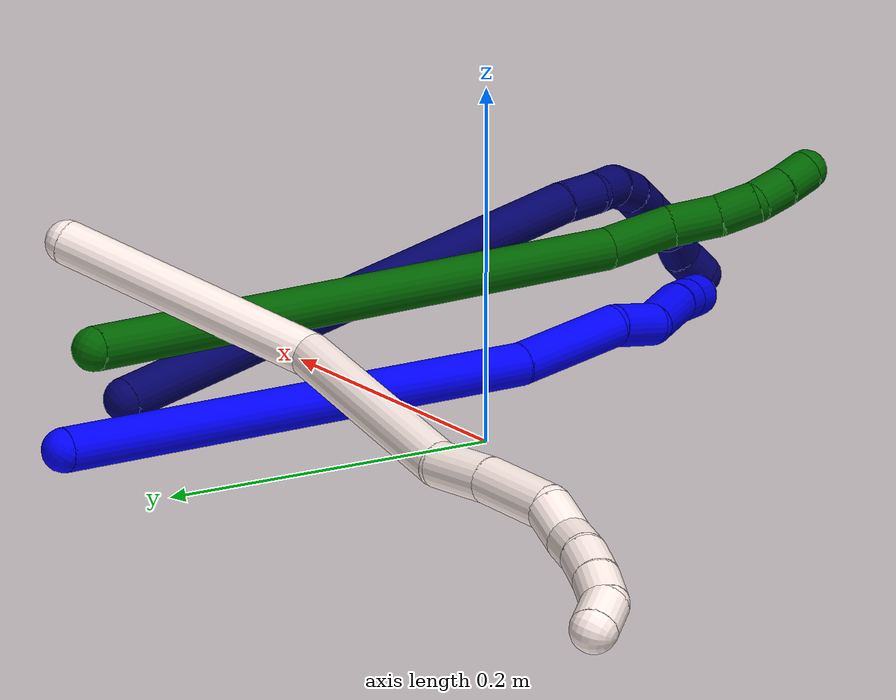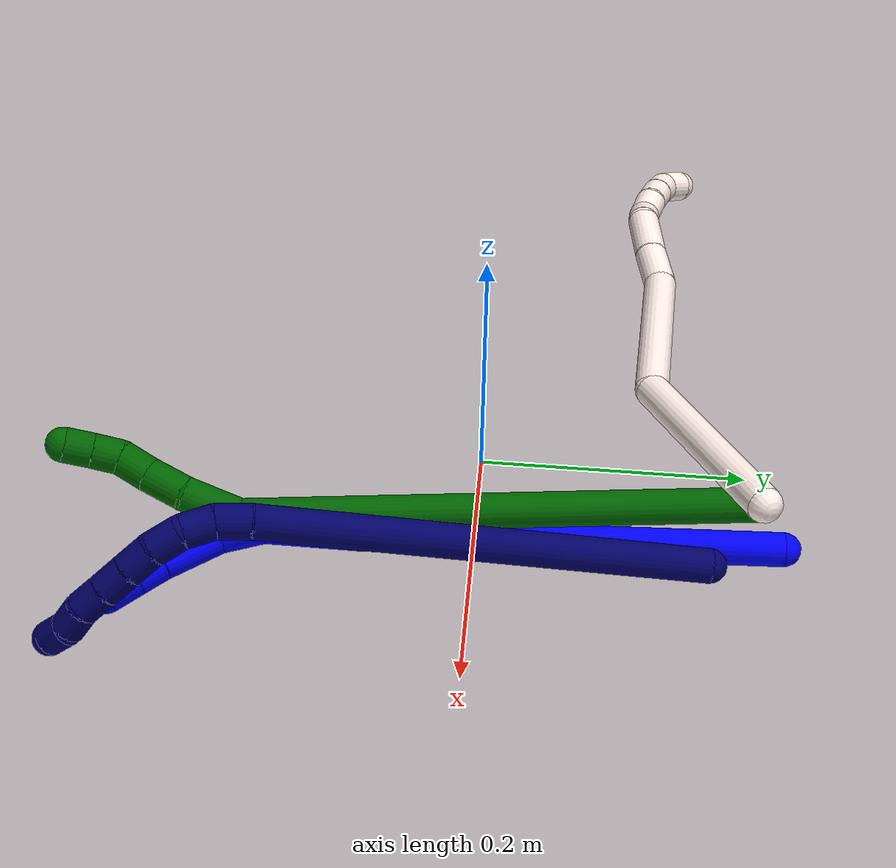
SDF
<sdf version="1.7">
 <world name="default">
  <model name="1">
   <static>0</static>
   <link name="1">
    <collision name="collision-cylinder-e_1_1_4">
     <pose>0.058964 -0.054342 0.129353 0.397718 0.397848 0.081205</pose>
     <geometry><cylinder><radius>0.0125</radius><length>0.304381</length></cylinder></geometry>
     <surface>
      <friction><ode><mu>1.16</mu><mu2>1.16</mu2><slip1>0</slip1><slip2>0</slip2></ode></friction>
      <contact><ode><kp>1e+06</kp><kd>1</kd><max_vel>0</max_vel><min_depth>0.001</min_depth></ode></contact>
     </surface>
    </collision>
    <visual name="visual-cylinder-e_1_1_4">
     <pose>0.058964 -0.054342 0.129353 0.397718 0.397848 0.081205</pose>
     <geometry><cylinder><radius>0.0125</radius><length>0.304381</length></cylinder></geometry>
     <material><ambient>0 0 1 1</ambient></material>
    </visual>
    <collision name="collision-cylinder-e_2_4_5">
     <pose>0.133415 -0.125952 0.2855 0.572475 0.452274 0.135223</pose>
     <geometry><cylinder><radius>0.0125</radius><length>0.070878</length></cylinder></geometry>
     <surface>
      <friction><ode><mu>1.16</mu><mu2>1.16</mu2><slip1>0</slip1><slip2>0</slip2></ode></friction>
      <contact><ode><kp>1e+06</kp><kd>1</kd><max_vel>0</max_vel><min_depth>0.001</min_depth></ode></contact>
     </surface>
    </collision>
    <visual name="visual-cylinder-e_2_4_5">
     <pose>0.133415 -0.125952 0.2855 0.572475 0.452274 0.135223</pose>
     <geometry><cylinder><radius>0.0125</radius><length>0.070878</length></cylinder></geometry>
     <material><ambient>0 0 1 1</ambient></material>
    </visual>
    <collision name="collision-cylinder-e_3_5_6">
     <pose>0.151299 -0.150065 0.327497 0.423067 0.142766 0.030708</pose>
     <geometry><cylinder><radius>0.0125</radius><length>0.03369</length></cylinder></geometry>
     <surface>
      <friction><ode><mu>1.16</mu><mu2>1.16</mu2><slip1>0</slip1><slip2>0</slip2></ode></friction>
      <contact><ode><kp>1e+06</kp><kd>1</kd><max_vel>0</max_vel><min_depth>0.001</min_depth></ode></contact>
     </surface>
    </collision>
    <visual name="visual-cylinder-e_3_5_6">
     <pose>0.151299 -0.150065 0.327497 0.423067 0.142766 0.030708</pose>
     <geometry><cylinder><radius>0.0125</radius><length>0.03369</length></cylinder></geometry>
     <material><ambient>0 0 1 1</ambient></material>
    </visual>
    <collision name="collision-cylinder-e_4_6_7">
     <pose>0.15248 -0.174143 0.357997 0.844849 -0.05273 -0.023706</pose>
     <geometry><cylinder><radius>0.0125</radius><length>0.046149</length></cylinder></geometry>
     <surface>
      <friction><ode><mu>1.16</mu><mu2>1.16</mu2><slip1>0</slip1><slip2>0</slip2></ode></friction>
      <contact><ode><kp>1e+06</kp><kd>1</kd><max_vel>0</max_vel><min_depth>0.001</min_depth></ode></contact>
     </surface>
    </collision>
    <visual name="visual-cylinder-e_4_6_7">
     <pose>0.15248 -0.174143 0.357997 0.844849 -0.05273 -0.023706</pose>
     <geometry><cylinder><radius>0.0125</radius><length>0.046149</length></cylinder></geometry>
     <material><ambient>0 0 1 1</ambient></material>
    </visual>
    <collision name="collision-cylinder-e_5_7_8">
     <pose>0.149622 -0.198438 0.380993 0.742256 -0.155877 -0.060766</pose>
     <geometry><cylinder><radius>0.0125</radius><length>0.021154</length></cylinder></geometry>
     <surface>
      <friction><ode><mu>1.16</mu><mu2>1.16</mu2><slip1>0</slip1><slip2>0</slip2></ode></friction>
      <contact><ode><kp>1e+06</kp><kd>1</kd><max_vel>0</max_vel><min_depth>0.001</min_depth></ode></contact>
     </surface>
    </collision>
    <visual name="visual-cylinder-e_5_7_8">
     <pose>0.149622 -0.198438 0.380993 0.742256 -0.155877 -0.060766</pose>
     <geometry><cylinder><radius>0.0125</radius><length>0.021154</length></cylinder></geometry>
     <material><ambient>0 0 1 1</ambient></material>
    </visual>
    <collision name="collision-cylinder-e_6_8_2">
     <pose>0.146069 -0.213348 0.397398 0.733621 -0.161604 -0.062203</pose>
     <geometry><cylinder><radius>0.0125</radius><length>0.023749</length></cylinder></geometry>
     <surface>
      <friction><ode><mu>1.16</mu><mu2>1.16</mu2><slip1>0</slip1><slip2>0</slip2></ode></friction>
      <contact><ode><kp>1e+06</kp><kd>1</kd><max_vel>0</max_vel><min_depth>0.001</min_depth></ode></contact>
     </surface>
    </collision>
    <visual name="visual-cylinder-e_6_8_2">
     <pose>0.146069 -0.213348 0.397398 0.733621 -0.161604 -0.062203</pose>
     <geometry><cylinder><radius>0.0125</radius><length>0.023749</length></cylinder></geometry>
     <material><ambient>0 0 1 1</ambient></material>
    </visual>
    <collision name="collision-sphere-2">
     <pose>0.144159 -0.221195 0.406103 0 -0 0</pose>
     <geometry><sphere><radius>0.0125</radius></sphere></geometry>
     <surface>
      <friction><ode><mu>1.16</mu><mu2>1.16</mu2><slip1>0</slip1><slip2>0</slip2></ode></friction>
      <contact><ode><kp>1e+06</kp><kd>1</kd><max_vel>0</max_vel><min_depth>0.001</min_depth></ode></contact>
     </surface>
    </collision>
    <visual name="visual-sphere-2">
     <pose>0.144159 -0.221195 0.406103 0 -0 0</pose>
     <geometry><sphere><radius>0.0125</radius></sphere></geometry>
     <material><ambient>0 0 1 1</ambient></material>
    </visual>
    <collision name="collision-sphere-4">
     <pose>0.117928 -0.108684 0.258706 0 -0 0</pose>
     <geometry><sphere><radius>0.0125</radius></sphere></geometry>
     <surface>
      <friction><ode><mu>1.16</mu><mu2>1.16</mu2><slip1>0</slip1><slip2>0</slip2></ode></friction>
      <contact><ode><kp>1e+06</kp><kd>1</kd><max_vel>0</max_vel><min_depth>0.001</min_depth></ode></contact>
     </surface>
    </collision>
    <visual name="visual-sphere-4">
     <pose>0.117928 -0.108684 0.258706 0 -0 0</pose>
     <geometry><sphere><radius>0.0125</radius></sphere></geometry>
     <material><ambient>0 0 1 1</ambient></material>
    </visual>
    <collision name="collision-sphere-1">
     <geometry><sphere><radius>0.0125</radius></sphere></geometry>
     <surface>
      <friction><ode><mu>1.16</mu><mu2>1.16</mu2><slip1>0</slip1><slip2>0</slip2></ode></friction>
      <contact><ode><kp>1e+06</kp><kd>1</kd><max_vel>0</max_vel><min_depth>0.001</min_depth></ode></contact>
     </surface>
    </collision>
    <visual name="visual-sphere-1">
     <geometry><sphere><radius>0.0125</radius></sphere></geometry>
     <material><ambient>0 0 1 1</ambient></material>
    </visual>
    <collision name="collision-sphere-8">
     <pose>0.14798 -0.205501 0.388693 0 -0 0</pose>
     <geometry><sphere><radius>0.0125</radius></sphere></geometry>
     <surface>
      <friction><ode><mu>1.16</mu><mu2>1.16</mu2><slip1>0</slip1><slip2>0</slip2></ode></friction>
      <contact><ode><kp>1e+06</kp><kd>1</kd><max_vel>0</max_vel><min_depth>0.001</min_depth></ode></contact>
     </surface>
    </collision>
    <visual name="visual-sphere-8">
     <pose>0.14798 -0.205501 0.388693 0 -0 0</pose>
     <geometry><sphere><radius>0.0125</radius></sphere></geometry>
     <material><ambient>0 0 1 1</ambient></material>
    </visual>
    <collision name="collision-sphere-5">
     <pose>0.148903 -0.143219 0.312293 0 -0 0</pose>
     <geometry><sphere><radius>0.0125</radius></sphere></geometry>
     <surface>
      <friction><ode><mu>1.16</mu><mu2>1.16</mu2><slip1>0</slip1><slip2>0</slip2></ode></friction>
      <contact><ode><kp>1e+06</kp><kd>1</kd><max_vel>0</max_vel><min_depth>0.001</min_depth></ode></contact>
     </surface>
    </collision>
    <visual name="visual-sphere-5">
     <pose>0.148903 -0.143219 0.312293 0 -0 0</pose>
     <geometry><sphere><radius>0.0125</radius></sphere></geometry>
     <material><ambient>0 0 1 1</ambient></material>
    </visual>
    <collision name="collision-sphere-6">
     <pose>0.153696 -0.15691 0.3427 0 -0 0</pose>
     <geometry><sphere><radius>0.0125</radius></sphere></geometry>
     <surface>
      <friction><ode><mu>1.16</mu><mu2>1.16</mu2><slip1>0</slip1><slip2>0</slip2></ode></friction>
      <contact><ode><kp>1e+06</kp><kd>1</kd><max_vel>0</max_vel><min_depth>0.001</min_depth></ode></contact>
     </surface>
    </collision>
    <visual name="visual-sphere-6">
     <pose>0.153696 -0.15691 0.3427 0 -0 0</pose>
     <geometry><sphere><radius>0.0125</radius></sphere></geometry>
     <material><ambient>0 0 1 1</ambient></material>
    </visual>
    <collision name="collision-sphere-7">
     <pose>0.151264 -0.191375 0.373293 0 -0 0</pose>
     <geometry><sphere><radius>0.0125</radius></sphere></geometry>
     <surface>
      <friction><ode><mu>1.16</mu><mu2>1.16</mu2><slip1>0</slip1><slip2>0</slip2></ode></friction>
      <contact><ode><kp>1e+06</kp><kd>1</kd><max_vel>0</max_vel><min_depth>0.001</min_depth></ode></contact>
     </surface>
    </collision>
    <visual name="visual-sphere-7">
     <pose>0.151264 -0.191375 0.373293 0 -0 0</pose>
     <geometry><sphere><radius>0.0125</radius></sphere></geometry>
     <material><ambient>0 0 1 1</ambient></material>
    </visual>
    <inertial>
     <pose>0.092343 -0.095649 0.209319 0 -0 0</pose>
     <mass>0.5</mass>
     <inertia>
      <ixx>0.002409</ixx>
      <ixy>0</ixy>
      <ixz>0</ixz>
      <iyy>0.002404</iyy>
      <iyz>0</iyz>
      <izz>-2.6e-05</izz>
     </inertia>
    </inertial>
   </link>
   <pose>0.075067 0.223698 0.011494 -2.34757 -0.721909 -2.55317</pose>
  </model>
  <model name="6">
   <static>0</static>
   <link name="6">
    <collision name="collision-cylinder-e_1_1_4">
     <pose>0.062867 -0.157906 -0.066121 1.96735 0.351945 0.52225</pose>
     <geometry><cylinder><radius>0.0125</radius><length>0.364739</length></cylinder></geometry>
     <surface>
      <friction><ode><mu>1.16</mu><mu2>1.16</mu2><slip1>0</slip1><slip2>0</slip2></ode></friction>
      <contact><ode><kp>1e+06</kp><kd>1</kd><max_vel>0</max_vel><min_depth>0.001</min_depth></ode></contact>
     </surface>
    </collision>
    <visual name="visual-cylinder-e_1_1_4">
     <pose>0.062867 -0.157906 -0.066121 1.96735 0.351945 0.52225</pose>
     <geometry><cylinder><radius>0.0125</radius><length>0.364739</length></cylinder></geometry>
     <material><ambient>0 0.392157 0.003922 1</ambient></material>
    </visual>
    <collision name="collision-cylinder-e_2_4_5">
     <pose>0.125352 -0.333245 -0.143323 2.13705 -0.018485 -0.033653</pose>
     <geometry><cylinder><radius>0.0125</radius><length>0.041321</length></cylinder></geometry>
     <surface>
      <friction><ode><mu>1.16</mu><mu2>1.16</mu2><slip1>0</slip1><slip2>0</slip2></ode></friction>
      <contact><ode><kp>1e+06</kp><kd>1</kd><max_vel>0</max_vel><min_depth>0.001</min_depth></ode></contact>
     </surface>
    </collision>
    <visual name="visual-cylinder-e_2_4_5">
     <pose>0.125352 -0.333245 -0.143323 2.13705 -0.018485 -0.033653</pose>
     <geometry><cylinder><radius>0.0125</radius><length>0.041321</length></cylinder></geometry>
     <material><ambient>0 0.392157 0.003922 1</ambient></material>
    </visual>
    <collision name="collision-cylinder-e_3_5_6">
     <pose>0.124383 -0.36131 -0.164485 2.32957 -0.040077 -0.09317</pose>
     <geometry><cylinder><radius>0.0125</radius><length>0.029324</length></cylinder></geometry>
     <surface>
      <friction><ode><mu>1.16</mu><mu2>1.16</mu2><slip1>0</slip1><slip2>0</slip2></ode></friction>
      <contact><ode><kp>1e+06</kp><kd>1</kd><max_vel>0</max_vel><min_depth>0.001</min_depth></ode></contact>
     </surface>
    </collision>
    <visual name="visual-cylinder-e_3_5_6">
     <pose>0.124383 -0.36131 -0.164485 2.32957 -0.040077 -0.09317</pose>
     <geometry><cylinder><radius>0.0125</radius><length>0.029324</length></cylinder></geometry>
     <material><ambient>0 0.392157 0.003922 1</ambient></material>
    </visual>
    <collision name="collision-cylinder-e_4_6_7">
     <pose>0.121987 -0.381095 -0.181843 2.24252 -0.153399 -0.315908</pose>
     <geometry><cylinder><radius>0.0125</radius><length>0.023668</length></cylinder></geometry>
     <surface>
      <friction><ode><mu>1.16</mu><mu2>1.16</mu2><slip1>0</slip1><slip2>0</slip2></ode></friction>
      <contact><ode><kp>1e+06</kp><kd>1</kd><max_vel>0</max_vel><min_depth>0.001</min_depth></ode></contact>
     </surface>
    </collision>
    <visual name="visual-cylinder-e_4_6_7">
     <pose>0.121987 -0.381095 -0.181843 2.24252 -0.153399 -0.315908</pose>
     <geometry><cylinder><radius>0.0125</radius><length>0.023668</length></cylinder></geometry>
     <material><ambient>0 0.392157 0.003922 1</ambient></material>
    </visual>
    <collision name="collision-cylinder-e_5_7_8">
     <pose>0.120592 -0.400056 -0.192319 1.88598 0.039996 0.055102</pose>
     <geometry><cylinder><radius>0.0125</radius><length>0.020646</length></cylinder></geometry>
     <surface>
      <friction><ode><mu>1.16</mu><mu2>1.16</mu2><slip1>0</slip1><slip2>0</slip2></ode></friction>
      <contact><ode><kp>1e+06</kp><kd>1</kd><max_vel>0</max_vel><min_depth>0.001</min_depth></ode></contact>
     </surface>
    </collision>
    <visual name="visual-cylinder-e_5_7_8">
     <pose>0.120592 -0.400056 -0.192319 1.88598 0.039996 0.055102</pose>
     <geometry><cylinder><radius>0.0125</radius><length>0.020646</length></cylinder></geometry>
     <material><ambient>0 0.392157 0.003922 1</ambient></material>
    </visual>
    <collision name="collision-cylinder-e_6_8_2">
     <pose>0.121305 -0.419751 -0.197791 1.79691 0.029576 0.037151</pose>
     <geometry><cylinder><radius>0.0125</radius><length>0.020302</length></cylinder></geometry>
     <surface>
      <friction><ode><mu>1.16</mu><mu2>1.16</mu2><slip1>0</slip1><slip2>0</slip2></ode></friction>
      <contact><ode><kp>1e+06</kp><kd>1</kd><max_vel>0</max_vel><min_depth>0.001</min_depth></ode></contact>
     </surface>
    </collision>
    <visual name="visual-cylinder-e_6_8_2">
     <pose>0.121305 -0.419751 -0.197791 1.79691 0.029576 0.037151</pose>
     <geometry><cylinder><radius>0.0125</radius><length>0.020302</length></cylinder></geometry>
     <material><ambient>0 0.392157 0.003922 1</ambient></material>
    </visual>
    <collision name="collision-sphere-2">
     <pose>0.121605 -0.429639 -0.200066 0 -0 0</pose>
     <geometry><sphere><radius>0.0125</radius></sphere></geometry>
     <surface>
      <friction><ode><mu>1.16</mu><mu2>1.16</mu2><slip1>0</slip1><slip2>0</slip2></ode></friction>
      <contact><ode><kp>1e+06</kp><kd>1</kd><max_vel>0</max_vel><min_depth>0.001</min_depth></ode></contact>
     </surface>
    </collision>
    <visual name="visual-sphere-2">
     <pose>0.121605 -0.429639 -0.200066 0 -0 0</pose>
     <geometry><sphere><radius>0.0125</radius></sphere></geometry>
     <material><ambient>0 0.392157 0.003922 1</ambient></material>
    </visual>
    <collision name="collision-sphere-4">
     <pose>0.125734 -0.315813 -0.132241 0 -0 0</pose>
     <geometry><sphere><radius>0.0125</radius></sphere></geometry>
     <surface>
      <friction><ode><mu>1.16</mu><mu2>1.16</mu2><slip1>0</slip1><slip2>0</slip2></ode></friction>
      <contact><ode><kp>1e+06</kp><kd>1</kd><max_vel>0</max_vel><min_depth>0.001</min_depth></ode></contact>
     </surface>
    </collision>
    <visual name="visual-sphere-4">
     <pose>0.125734 -0.315813 -0.132241 0 -0 0</pose>
     <geometry><sphere><radius>0.0125</radius></sphere></geometry>
     <material><ambient>0 0.392157 0.003922 1</ambient></material>
    </visual>
    <collision name="collision-sphere-1">
     <geometry><sphere><radius>0.0125</radius></sphere></geometry>
     <surface>
      <friction><ode><mu>1.16</mu><mu2>1.16</mu2><slip1>0</slip1><slip2>0</slip2></ode></friction>
      <contact><ode><kp>1e+06</kp><kd>1</kd><max_vel>0</max_vel><min_depth>0.001</min_depth></ode></contact>
     </surface>
    </collision>
    <visual name="visual-sphere-1">
     <geometry><sphere><radius>0.0125</radius></sphere></geometry>
     <material><ambient>0 0.392157 0.003922 1</ambient></material>
    </visual>
    <collision name="collision-sphere-8">
     <pose>0.121005 -0.409863 -0.195517 0 -0 0</pose>
     <geometry><sphere><radius>0.0125</radius></sphere></geometry>
     <surface>
      <friction><ode><mu>1.16</mu><mu2>1.16</mu2><slip1>0</slip1><slip2>0</slip2></ode></friction>
      <contact><ode><kp>1e+06</kp><kd>1</kd><max_vel>0</max_vel><min_depth>0.001</min_depth></ode></contact>
     </surface>
    </collision>
    <visual name="visual-sphere-8">
     <pose>0.121005 -0.409863 -0.195517 0 -0 0</pose>
     <geometry><sphere><radius>0.0125</radius></sphere></geometry>
     <material><ambient>0 0.392157 0.003922 1</ambient></material>
    </visual>
    <collision name="collision-sphere-5">
     <pose>0.12497 -0.350678 -0.154405 0 -0 0</pose>
     <geometry><sphere><radius>0.0125</radius></sphere></geometry>
     <surface>
      <friction><ode><mu>1.16</mu><mu2>1.16</mu2><slip1>0</slip1><slip2>0</slip2></ode></friction>
      <contact><ode><kp>1e+06</kp><kd>1</kd><max_vel>0</max_vel><min_depth>0.001</min_depth></ode></contact>
     </surface>
    </collision>
    <visual name="visual-sphere-5">
     <pose>0.12497 -0.350678 -0.154405 0 -0 0</pose>
     <geometry><sphere><radius>0.0125</radius></sphere></geometry>
     <material><ambient>0 0.392157 0.003922 1</ambient></material>
    </visual>
    <collision name="collision-sphere-6">
     <pose>0.123795 -0.371941 -0.174565 0 -0 0</pose>
     <geometry><sphere><radius>0.0125</radius></sphere></geometry>
     <surface>
      <friction><ode><mu>1.16</mu><mu2>1.16</mu2><slip1>0</slip1><slip2>0</slip2></ode></friction>
      <contact><ode><kp>1e+06</kp><kd>1</kd><max_vel>0</max_vel><min_depth>0.001</min_depth></ode></contact>
     </surface>
    </collision>
    <visual name="visual-sphere-6">
     <pose>0.123795 -0.371941 -0.174565 0 -0 0</pose>
     <geometry><sphere><radius>0.0125</radius></sphere></geometry>
     <material><ambient>0 0.392157 0.003922 1</ambient></material>
    </visual>
    <collision name="collision-sphere-7">
     <pose>0.120179 -0.39025 -0.189122 0 -0 0</pose>
     <geometry><sphere><radius>0.0125</radius></sphere></geometry>
     <surface>
      <friction><ode><mu>1.16</mu><mu2>1.16</mu2><slip1>0</slip1><slip2>0</slip2></ode></friction>
      <contact><ode><kp>1e+06</kp><kd>1</kd><max_vel>0</max_vel><min_depth>0.001</min_depth></ode></contact>
     </surface>
    </collision>
    <visual name="visual-sphere-7">
     <pose>0.120179 -0.39025 -0.189122 0 -0 0</pose>
     <geometry><sphere><radius>0.0125</radius></sphere></geometry>
     <material><ambient>0 0.392157 0.003922 1</ambient></material>
    </visual>
    <inertial>
     <pose>0.079194 -0.215522 -0.094305 0 -0 0</pose>
     <mass>0.5</mass>
     <inertia>
      <ixx>0.005226</ixx>
      <ixy>0</ixy>
      <ixz>0</ixz>
      <iyy>0.001143</iyy>
      <iyz>0</iyz>
      <izz>0.002113</izz>
     </inertia>
    </inertial>
   </link>
   <pose>0.079556 0.201765 0.064257 -1.01638 1.01887 -0.584873</pose>
  </model>
  <model name="7">
   <static>0</static>
   <link name="7">
    <collision name="collision-cylinder-e_1_1_4">
     <pose>-0.029275 -0.156742 0.023596 1.42138 -0.182631 -0.157309</pose>
     <geometry><cylinder><radius>0.0125</radius><length>0.322377</length></cylinder></geometry>
     <surface>
      <friction><ode><mu>1.16</mu><mu2>1.16</mu2><slip1>0</slip1><slip2>0</slip2></ode></friction>
      <contact><ode><kp>1e+06</kp><kd>1</kd><max_vel>0</max_vel><min_depth>0.001</min_depth></ode></contact>
     </surface>
    </collision>
    <visual name="visual-cylinder-e_1_1_4">
     <pose>-0.029275 -0.156742 0.023596 1.42138 -0.182631 -0.157309</pose>
     <geometry><cylinder><radius>0.0125</radius><length>0.322377</length></cylinder></geometry>
     <material><ambient>0.003922 0 0.403922 1</ambient></material>
    </visual>
    <collision name="collision-cylinder-e_2_4_5">
     <pose>-0.059381 -0.32619 0.048567 1.46305 -0.064939 -0.058298</pose>
     <geometry><cylinder><radius>0.0125</radius><length>0.025615</length></cylinder></geometry>
     <surface>
      <friction><ode><mu>1.16</mu><mu2>1.16</mu2><slip1>0</slip1><slip2>0</slip2></ode></friction>
      <contact><ode><kp>1e+06</kp><kd>1</kd><max_vel>0</max_vel><min_depth>0.001</min_depth></ode></contact>
     </surface>
    </collision>
    <visual name="visual-cylinder-e_2_4_5">
     <pose>-0.059381 -0.32619 0.048567 1.46305 -0.064939 -0.058298</pose>
     <geometry><cylinder><radius>0.0125</radius><length>0.025615</length></cylinder></geometry>
     <material><ambient>0.003922 0 0.403922 1</ambient></material>
    </visual>
    <collision name="collision-cylinder-e_3_5_6">
     <pose>-0.058209 -0.349814 0.054028 1.21264 0.170111 0.118112</pose>
     <geometry><cylinder><radius>0.0125</radius><length>0.023656</length></cylinder></geometry>
     <surface>
      <friction><ode><mu>1.16</mu><mu2>1.16</mu2><slip1>0</slip1><slip2>0</slip2></ode></friction>
      <contact><ode><kp>1e+06</kp><kd>1</kd><max_vel>0</max_vel><min_depth>0.001</min_depth></ode></contact>
     </surface>
    </collision>
    <visual name="visual-cylinder-e_3_5_6">
     <pose>-0.058209 -0.349814 0.054028 1.21264 0.170111 0.118112</pose>
     <geometry><cylinder><radius>0.0125</radius><length>0.023656</length></cylinder></geometry>
     <material><ambient>0.003922 0 0.403922 1</ambient></material>
    </visual>
    <collision name="collision-cylinder-e_4_6_7">
     <pose>-0.050869 -0.370661 0.05975 1.40754 0.487664 0.416194</pose>
     <geometry><cylinder><radius>0.0125</radius><length>0.022784</length></cylinder></geometry>
     <surface>
      <friction><ode><mu>1.16</mu><mu2>1.16</mu2><slip1>0</slip1><slip2>0</slip2></ode></friction>
      <contact><ode><kp>1e+06</kp><kd>1</kd><max_vel>0</max_vel><min_depth>0.001</min_depth></ode></contact>
     </surface>
    </collision>
    <visual name="visual-cylinder-e_4_6_7">
     <pose>-0.050869 -0.370661 0.05975 1.40754 0.487664 0.416194</pose>
     <geometry><cylinder><radius>0.0125</radius><length>0.022784</length></cylinder></geometry>
     <material><ambient>0.003922 0 0.403922 1</ambient></material>
    </visual>
    <collision name="collision-cylinder-e_5_7_8">
     <pose>-0.038606 -0.389194 0.062158 1.4813 0.675834 0.621716</pose>
     <geometry><cylinder><radius>0.0125</radius><length>0.02214</length></cylinder></geometry>
     <surface>
      <friction><ode><mu>1.16</mu><mu2>1.16</mu2><slip1>0</slip1><slip2>0</slip2></ode></friction>
      <contact><ode><kp>1e+06</kp><kd>1</kd><max_vel>0</max_vel><min_depth>0.001</min_depth></ode></contact>
     </surface>
    </collision>
    <visual name="visual-cylinder-e_5_7_8">
     <pose>-0.038606 -0.389194 0.062158 1.4813 0.675834 0.621716</pose>
     <geometry><cylinder><radius>0.0125</radius><length>0.02214</length></cylinder></geometry>
     <material><ambient>0.003922 0 0.403922 1</ambient></material>
    </visual>
    <collision name="collision-cylinder-e_6_8_9">
     <pose>-0.024739 -0.406245 0.063185 1.54057 0.68758 0.668618</pose>
     <geometry><cylinder><radius>0.0125</radius><length>0.021877</length></cylinder></geometry>
     <surface>
      <friction><ode><mu>1.16</mu><mu2>1.16</mu2><slip1>0</slip1><slip2>0</slip2></ode></friction>
      <contact><ode><kp>1e+06</kp><kd>1</kd><max_vel>0</max_vel><min_depth>0.001</min_depth></ode></contact>
     </surface>
    </collision>
    <visual name="visual-cylinder-e_6_8_9">
     <pose>-0.024739 -0.406245 0.063185 1.54057 0.68758 0.668618</pose>
     <geometry><cylinder><radius>0.0125</radius><length>0.021877</length></cylinder></geometry>
     <material><ambient>0.003922 0 0.403922 1</ambient></material>
    </visual>
    <collision name="collision-cylinder-e_7_9_10">
     <pose>-0.010998 -0.423014 0.06309 1.61291 0.684711 0.71179</pose>
     <geometry><cylinder><radius>0.0125</radius><length>0.021499</length></cylinder></geometry>
     <surface>
      <friction><ode><mu>1.16</mu><mu2>1.16</mu2><slip1>0</slip1><slip2>0</slip2></ode></friction>
      <contact><ode><kp>1e+06</kp><kd>1</kd><max_vel>0</max_vel><min_depth>0.001</min_depth></ode></contact>
     </surface>
    </collision>
    <visual name="visual-cylinder-e_7_9_10">
     <pose>-0.010998 -0.423014 0.06309 1.61291 0.684711 0.71179</pose>
     <geometry><cylinder><radius>0.0125</radius><length>0.021499</length></cylinder></geometry>
     <material><ambient>0.003922 0 0.403922 1</ambient></material>
    </visual>
    <collision name="collision-cylinder-e_8_10_11">
     <pose>0.003547 -0.437442 0.061017 1.84559 0.884343 1.11772</pose>
     <geometry><cylinder><radius>0.0125</radius><length>0.02003</length></cylinder></geometry>
     <surface>
      <friction><ode><mu>1.16</mu><mu2>1.16</mu2><slip1>0</slip1><slip2>0</slip2></ode></friction>
      <contact><ode><kp>1e+06</kp><kd>1</kd><max_vel>0</max_vel><min_depth>0.001</min_depth></ode></contact>
     </surface>
    </collision>
    <visual name="visual-cylinder-e_8_10_11">
     <pose>0.003547 -0.437442 0.061017 1.84559 0.884343 1.11772</pose>
     <geometry><cylinder><radius>0.0125</radius><length>0.02003</length></cylinder></geometry>
     <material><ambient>0.003922 0 0.403922 1</ambient></material>
    </visual>
    <collision name="collision-cylinder-e_9_11_2">
     <pose>0.016693 -0.451013 0.055372 2.05483 0.569677 0.902734</pose>
     <geometry><cylinder><radius>0.0125</radius><length>0.020021</length></cylinder></geometry>
     <surface>
      <friction><ode><mu>1.16</mu><mu2>1.16</mu2><slip1>0</slip1><slip2>0</slip2></ode></friction>
      <contact><ode><kp>1e+06</kp><kd>1</kd><max_vel>0</max_vel><min_depth>0.001</min_depth></ode></contact>
     </surface>
    </collision>
    <visual name="visual-cylinder-e_9_11_2">
     <pose>0.016693 -0.451013 0.055372 2.05483 0.569677 0.902734</pose>
     <geometry><cylinder><radius>0.0125</radius><length>0.020021</length></cylinder></geometry>
     <material><ambient>0.003922 0 0.403922 1</ambient></material>
    </visual>
    <collision name="collision-sphere-2">
     <pose>0.022093 -0.458474 0.051449 0 -0 0</pose>
     <geometry><sphere><radius>0.0125</radius></sphere></geometry>
     <surface>
      <friction><ode><mu>1.16</mu><mu2>1.16</mu2><slip1>0</slip1><slip2>0</slip2></ode></friction>
      <contact><ode><kp>1e+06</kp><kd>1</kd><max_vel>0</max_vel><min_depth>0.001</min_depth></ode></contact>
     </surface>
    </collision>
    <visual name="visual-sphere-2">
     <pose>0.022093 -0.458474 0.051449 0 -0 0</pose>
     <geometry><sphere><radius>0.0125</radius></sphere></geometry>
     <material><ambient>0.003922 0 0.403922 1</ambient></material>
    </visual>
    <collision name="collision-sphere-11">
     <pose>0.011294 -0.443552 0.059295 0 -0 0</pose>
     <geometry><sphere><radius>0.0125</radius></sphere></geometry>
     <surface>
      <friction><ode><mu>1.16</mu><mu2>1.16</mu2><slip1>0</slip1><slip2>0</slip2></ode></friction>
      <contact><ode><kp>1e+06</kp><kd>1</kd><max_vel>0</max_vel><min_depth>0.001</min_depth></ode></contact>
     </surface>
    </collision>
    <visual name="visual-sphere-11">
     <pose>0.011294 -0.443552 0.059295 0 -0 0</pose>
     <geometry><sphere><radius>0.0125</radius></sphere></geometry>
     <material><ambient>0.003922 0 0.403922 1</ambient></material>
    </visual>
    <collision name="collision-sphere-10">
     <pose>-0.0042 -0.431333 0.06274 0 -0 0</pose>
     <geometry><sphere><radius>0.0125</radius></sphere></geometry>
     <surface>
      <friction><ode><mu>1.16</mu><mu2>1.16</mu2><slip1>0</slip1><slip2>0</slip2></ode></friction>
      <contact><ode><kp>1e+06</kp><kd>1</kd><max_vel>0</max_vel><min_depth>0.001</min_depth></ode></contact>
     </surface>
    </collision>
    <visual name="visual-sphere-10">
     <pose>-0.0042 -0.431333 0.06274 0 -0 0</pose>
     <geometry><sphere><radius>0.0125</radius></sphere></geometry>
     <material><ambient>0.003922 0 0.403922 1</ambient></material>
    </visual>
    <collision name="collision-sphere-9">
     <pose>-0.017797 -0.414695 0.063441 0 -0 0</pose>
     <geometry><sphere><radius>0.0125</radius></sphere></geometry>
     <surface>
      <friction><ode><mu>1.16</mu><mu2>1.16</mu2><slip1>0</slip1><slip2>0</slip2></ode></friction>
      <contact><ode><kp>1e+06</kp><kd>1</kd><max_vel>0</max_vel><min_depth>0.001</min_depth></ode></contact>
     </surface>
    </collision>
    <visual name="visual-sphere-9">
     <pose>-0.017797 -0.414695 0.063441 0 -0 0</pose>
     <geometry><sphere><radius>0.0125</radius></sphere></geometry>
     <material><ambient>0.003922 0 0.403922 1</ambient></material>
    </visual>
    <collision name="collision-sphere-4">
     <pose>-0.058549 -0.313483 0.047193 0 -0 0</pose>
     <geometry><sphere><radius>0.0125</radius></sphere></geometry>
     <surface>
      <friction><ode><mu>1.16</mu><mu2>1.16</mu2><slip1>0</slip1><slip2>0</slip2></ode></friction>
      <contact><ode><kp>1e+06</kp><kd>1</kd><max_vel>0</max_vel><min_depth>0.001</min_depth></ode></contact>
     </surface>
    </collision>
    <visual name="visual-sphere-4">
     <pose>-0.058549 -0.313483 0.047193 0 -0 0</pose>
     <geometry><sphere><radius>0.0125</radius></sphere></geometry>
     <material><ambient>0.003922 0 0.403922 1</ambient></material>
    </visual>
    <collision name="collision-sphere-1">
     <geometry><sphere><radius>0.0125</radius></sphere></geometry>
     <surface>
      <friction><ode><mu>1.16</mu><mu2>1.16</mu2><slip1>0</slip1><slip2>0</slip2></ode></friction>
      <contact><ode><kp>1e+06</kp><kd>1</kd><max_vel>0</max_vel><min_depth>0.001</min_depth></ode></contact>
     </surface>
    </collision>
    <visual name="visual-sphere-1">
     <geometry><sphere><radius>0.0125</radius></sphere></geometry>
     <material><ambient>0.003922 0 0.403922 1</ambient></material>
    </visual>
    <collision name="collision-sphere-8">
     <pose>-0.031682 -0.397796 0.06293 0 -0 0</pose>
     <geometry><sphere><radius>0.0125</radius></sphere></geometry>
     <surface>
      <friction><ode><mu>1.16</mu><mu2>1.16</mu2><slip1>0</slip1><slip2>0</slip2></ode></friction>
      <contact><ode><kp>1e+06</kp><kd>1</kd><max_vel>0</max_vel><min_depth>0.001</min_depth></ode></contact>
     </surface>
    </collision>
    <visual name="visual-sphere-8">
     <pose>-0.031682 -0.397796 0.06293 0 -0 0</pose>
     <geometry><sphere><radius>0.0125</radius></sphere></geometry>
     <material><ambient>0.003922 0 0.403922 1</ambient></material>
    </visual>
    <collision name="collision-sphere-5">
     <pose>-0.060212 -0.338896 0.049942 0 -0 0</pose>
     <geometry><sphere><radius>0.0125</radius></sphere></geometry>
     <surface>
      <friction><ode><mu>1.16</mu><mu2>1.16</mu2><slip1>0</slip1><slip2>0</slip2></ode></friction>
      <contact><ode><kp>1e+06</kp><kd>1</kd><max_vel>0</max_vel><min_depth>0.001</min_depth></ode></contact>
     </surface>
    </collision>
    <visual name="visual-sphere-5">
     <pose>-0.060212 -0.338896 0.049942 0 -0 0</pose>
     <geometry><sphere><radius>0.0125</radius></sphere></geometry>
     <material><ambient>0.003922 0 0.403922 1</ambient></material>
    </visual>
    <collision name="collision-sphere-6">
     <pose>-0.056207 -0.360731 0.058115 0 -0 0</pose>
     <geometry><sphere><radius>0.0125</radius></sphere></geometry>
     <surface>
      <friction><ode><mu>1.16</mu><mu2>1.16</mu2><slip1>0</slip1><slip2>0</slip2></ode></friction>
      <contact><ode><kp>1e+06</kp><kd>1</kd><max_vel>0</max_vel><min_depth>0.001</min_depth></ode></contact>
     </surface>
    </collision>
    <visual name="visual-sphere-6">
     <pose>-0.056207 -0.360731 0.058115 0 -0 0</pose>
     <geometry><sphere><radius>0.0125</radius></sphere></geometry>
     <material><ambient>0.003922 0 0.403922 1</ambient></material>
    </visual>
    <collision name="collision-sphere-7">
     <pose>-0.045531 -0.380592 0.061386 0 -0 0</pose>
     <geometry><sphere><radius>0.0125</radius></sphere></geometry>
     <surface>
      <friction><ode><mu>1.16</mu><mu2>1.16</mu2><slip1>0</slip1><slip2>0</slip2></ode></friction>
      <contact><ode><kp>1e+06</kp><kd>1</kd><max_vel>0</max_vel><min_depth>0.001</min_depth></ode></contact>
     </surface>
    </collision>
    <visual name="visual-sphere-7">
     <pose>-0.045531 -0.380592 0.061386 0 -0 0</pose>
     <geometry><sphere><radius>0.0125</radius></sphere></geometry>
     <material><ambient>0.003922 0 0.403922 1</ambient></material>
    </visual>
    <inertial>
     <pose>-0.029443 -0.239992 0.035872 0 -0 0</pose>
     <mass>0.5</mass>
     <inertia>
      <ixx>0.002309</ixx>
      <ixy>0</ixy>
      <ixz>0</ixz>
      <iyy>3.3e-05</iyy>
      <iyz>0</iyz>
      <izz>0.003246</izz>
     </inertia>
    </inertial>
   </link>
   <pose>0.105517 0.168489 0.024429 0.082736 1.06398 0.159921</pose>
  </model>
  <model name="11">
   <static>0</static>
   <link name="11">
    <collision name="collision-cylinder-e_1_1_4">
     <pose>-0.003128 -0.000366 0.081287 0.004502 -0.038457 -8.7e-05</pose>
     <geometry><cylinder><radius>0.0125</radius><length>0.162696</length></cylinder></geometry>
     <surface>
      <friction><ode><mu>1.16</mu><mu2>1.16</mu2><slip1>0</slip1><slip2>0</slip2></ode></friction>
      <contact><ode><kp>1e+06</kp><kd>1</kd><max_vel>0</max_vel><min_depth>0.001</min_depth></ode></contact>
     </surface>
    </collision>
    <visual name="visual-cylinder-e_1_1_4">
     <pose>-0.003128 -0.000366 0.081287 0.004502 -0.038457 -8.7e-05</pose>
     <geometry><cylinder><radius>0.0125</radius><length>0.162696</length></cylinder></geometry>
     <material><ambient>1 0.933333 0.909804 1</ambient></material>
    </visual>
    <collision name="collision-cylinder-e_2_4_5">
     <pose>-0.04462 0.002228 0.224434 -0.047818 -0.554609 0.013613</pose>
     <geometry><cylinder><radius>0.0125</radius><length>0.145703</length></cylinder></geometry>
     <surface>
      <friction><ode><mu>1.16</mu><mu2>1.16</mu2><slip1>0</slip1><slip2>0</slip2></ode></friction>
      <contact><ode><kp>1e+06</kp><kd>1</kd><max_vel>0</max_vel><min_depth>0.001</min_depth></ode></contact>
     </surface>
    </collision>
    <visual name="visual-cylinder-e_2_4_5">
     <pose>-0.04462 0.002228 0.224434 -0.047818 -0.554609 0.013613</pose>
     <geometry><cylinder><radius>0.0125</radius><length>0.145703</length></cylinder></geometry>
     <material><ambient>1 0.933333 0.909804 1</ambient></material>
    </visual>
    <collision name="collision-cylinder-e_3_5_6">
     <pose>-0.08862 0.00928 0.303436 -0.234297 -0.309542 0.036719</pose>
     <geometry><cylinder><radius>0.0125</radius><length>0.037003</length></cylinder></geometry>
     <surface>
      <friction><ode><mu>1.16</mu><mu2>1.16</mu2><slip1>0</slip1><slip2>0</slip2></ode></friction>
      <contact><ode><kp>1e+06</kp><kd>1</kd><max_vel>0</max_vel><min_depth>0.001</min_depth></ode></contact>
     </surface>
    </collision>
    <visual name="visual-cylinder-e_3_5_6">
     <pose>-0.08862 0.00928 0.303436 -0.234297 -0.309542 0.036719</pose>
     <geometry><cylinder><radius>0.0125</radius><length>0.037003</length></cylinder></geometry>
     <material><ambient>1 0.933333 0.909804 1</ambient></material>
    </visual>
    <collision name="collision-cylinder-e_4_6_7">
     <pose>-0.1029 0.016822 0.342152 -0.158587 -0.376737 0.030292</pose>
     <geometry><cylinder><radius>0.0125</radius><length>0.046995</length></cylinder></geometry>
     <surface>
      <friction><ode><mu>1.16</mu><mu2>1.16</mu2><slip1>0</slip1><slip2>0</slip2></ode></friction>
      <contact><ode><kp>1e+06</kp><kd>1</kd><max_vel>0</max_vel><min_depth>0.001</min_depth></ode></contact>
     </surface>
    </collision>
    <visual name="visual-cylinder-e_4_6_7">
     <pose>-0.1029 0.016822 0.342152 -0.158587 -0.376737 0.030292</pose>
     <geometry><cylinder><radius>0.0125</radius><length>0.046995</length></cylinder></geometry>
     <material><ambient>1 0.933333 0.909804 1</ambient></material>
    </visual>
    <collision name="collision-cylinder-e_5_7_8">
     <pose>-0.117148 0.017163 0.373673 0.302959 -0.493369 -0.07684</pose>
     <geometry><cylinder><radius>0.0125</radius><length>0.023662</length></cylinder></geometry>
     <surface>
      <friction><ode><mu>1.16</mu><mu2>1.16</mu2><slip1>0</slip1><slip2>0</slip2></ode></friction>
      <contact><ode><kp>1e+06</kp><kd>1</kd><max_vel>0</max_vel><min_depth>0.001</min_depth></ode></contact>
     </surface>
    </collision>
    <visual name="visual-cylinder-e_5_7_8">
     <pose>-0.117148 0.017163 0.373673 0.302959 -0.493369 -0.07684</pose>
     <geometry><cylinder><radius>0.0125</radius><length>0.023662</length></cylinder></geometry>
     <material><ambient>1 0.933333 0.909804 1</ambient></material>
    </visual>
    <collision name="collision-cylinder-e_6_8_9">
     <pose>-0.130532 0.015037 0.391656 -0.121611 -0.765454 0.049009</pose>
     <geometry><cylinder><radius>0.0125</radius><length>0.022459</length></cylinder></geometry>
     <surface>
      <friction><ode><mu>1.16</mu><mu2>1.16</mu2><slip1>0</slip1><slip2>0</slip2></ode></friction>
      <contact><ode><kp>1e+06</kp><kd>1</kd><max_vel>0</max_vel><min_depth>0.001</min_depth></ode></contact>
     </surface>
    </collision>
    <visual name="visual-cylinder-e_6_8_9">
     <pose>-0.130532 0.015037 0.391656 -0.121611 -0.765454 0.049009</pose>
     <geometry><cylinder><radius>0.0125</radius><length>0.022459</length></cylinder></geometry>
     <material><ambient>1 0.933333 0.909804 1</ambient></material>
    </visual>
    <collision name="collision-cylinder-e_7_9_10">
     <pose>-0.145567 0.014812 0.40746 0.154241 -0.745389 -0.060404</pose>
     <geometry><cylinder><radius>0.0125</radius><length>0.021391</length></cylinder></geometry>
     <surface>
      <friction><ode><mu>1.16</mu><mu2>1.16</mu2><slip1>0</slip1><slip2>0</slip2></ode></friction>
      <contact><ode><kp>1e+06</kp><kd>1</kd><max_vel>0</max_vel><min_depth>0.001</min_depth></ode></contact>
     </surface>
    </collision>
    <visual name="visual-cylinder-e_7_9_10">
     <pose>-0.145567 0.014812 0.40746 0.154241 -0.745389 -0.060404</pose>
     <geometry><cylinder><radius>0.0125</radius><length>0.021391</length></cylinder></geometry>
     <material><ambient>1 0.933333 0.909804 1</ambient></material>
    </visual>
    <collision name="collision-cylinder-e_8_10_11">
     <pose>-0.159802 0.011502 0.422124 0.295876 -0.76918 -0.12049</pose>
     <geometry><cylinder><radius>0.0125</radius><length>0.020074</length></cylinder></geometry>
     <surface>
      <friction><ode><mu>1.16</mu><mu2>1.16</mu2><slip1>0</slip1><slip2>0</slip2></ode></friction>
      <contact><ode><kp>1e+06</kp><kd>1</kd><max_vel>0</max_vel><min_depth>0.001</min_depth></ode></contact>
     </surface>
    </collision>
    <visual name="visual-cylinder-e_8_10_11">
     <pose>-0.159802 0.011502 0.422124 0.295876 -0.76918 -0.12049</pose>
     <geometry><cylinder><radius>0.0125</radius><length>0.020074</length></cylinder></geometry>
     <material><ambient>1 0.933333 0.909804 1</ambient></material>
    </visual>
    <collision name="collision-cylinder-e_9_11_2">
     <pose>-0.175909 0.006184 0.43158 0.898721 -1.14774 -0.604414</pose>
     <geometry><cylinder><radius>0.0125</radius><length>0.020017</length></cylinder></geometry>
     <surface>
      <friction><ode><mu>1.16</mu><mu2>1.16</mu2><slip1>0</slip1><slip2>0</slip2></ode></friction>
      <contact><ode><kp>1e+06</kp><kd>1</kd><max_vel>0</max_vel><min_depth>0.001</min_depth></ode></contact>
     </surface>
    </collision>
    <visual name="visual-cylinder-e_9_11_2">
     <pose>-0.175909 0.006184 0.43158 0.898721 -1.14774 -0.604414</pose>
     <geometry><cylinder><radius>0.0125</radius><length>0.020017</length></cylinder></geometry>
     <material><ambient>1 0.933333 0.909804 1</ambient></material>
    </visual>
    <collision name="collision-sphere-2">
     <pose>-0.185035 0.002968 0.434139 0 -0 0</pose>
     <geometry><sphere><radius>0.0125</radius></sphere></geometry>
     <surface>
      <friction><ode><mu>1.16</mu><mu2>1.16</mu2><slip1>0</slip1><slip2>0</slip2></ode></friction>
      <contact><ode><kp>1e+06</kp><kd>1</kd><max_vel>0</max_vel><min_depth>0.001</min_depth></ode></contact>
     </surface>
    </collision>
    <visual name="visual-sphere-2">
     <pose>-0.185035 0.002968 0.434139 0 -0 0</pose>
     <geometry><sphere><radius>0.0125</radius></sphere></geometry>
     <material><ambient>1 0.933333 0.909804 1</ambient></material>
    </visual>
    <collision name="collision-sphere-11">
     <pose>-0.166783 0.009399 0.429022 0 -0 0</pose>
     <geometry><sphere><radius>0.0125</radius></sphere></geometry>
     <surface>
      <friction><ode><mu>1.16</mu><mu2>1.16</mu2><slip1>0</slip1><slip2>0</slip2></ode></friction>
      <contact><ode><kp>1e+06</kp><kd>1</kd><max_vel>0</max_vel><min_depth>0.001</min_depth></ode></contact>
     </surface>
    </collision>
    <visual name="visual-sphere-11">
     <pose>-0.166783 0.009399 0.429022 0 -0 0</pose>
     <geometry><sphere><radius>0.0125</radius></sphere></geometry>
     <material><ambient>1 0.933333 0.909804 1</ambient></material>
    </visual>
    <collision name="collision-sphere-10">
     <pose>-0.152821 0.013604 0.415226 0 -0 0</pose>
     <geometry><sphere><radius>0.0125</radius></sphere></geometry>
     <surface>
      <friction><ode><mu>1.16</mu><mu2>1.16</mu2><slip1>0</slip1><slip2>0</slip2></ode></friction>
      <contact><ode><kp>1e+06</kp><kd>1</kd><max_vel>0</max_vel><min_depth>0.001</min_depth></ode></contact>
     </surface>
    </collision>
    <visual name="visual-sphere-10">
     <pose>-0.152821 0.013604 0.415226 0 -0 0</pose>
     <geometry><sphere><radius>0.0125</radius></sphere></geometry>
     <material><ambient>1 0.933333 0.909804 1</ambient></material>
    </visual>
    <collision name="collision-sphere-9">
     <pose>-0.138312 0.016019 0.399694 0 -0 0</pose>
     <geometry><sphere><radius>0.0125</radius></sphere></geometry>
     <surface>
      <friction><ode><mu>1.16</mu><mu2>1.16</mu2><slip1>0</slip1><slip2>0</slip2></ode></friction>
      <contact><ode><kp>1e+06</kp><kd>1</kd><max_vel>0</max_vel><min_depth>0.001</min_depth></ode></contact>
     </surface>
    </collision>
    <visual name="visual-sphere-9">
     <pose>-0.138312 0.016019 0.399694 0 -0 0</pose>
     <geometry><sphere><radius>0.0125</radius></sphere></geometry>
     <material><ambient>1 0.933333 0.909804 1</ambient></material>
    </visual>
    <collision name="collision-sphere-4">
     <pose>-0.006255 -0.000732 0.162574 0 -0 0</pose>
     <geometry><sphere><radius>0.0125</radius></sphere></geometry>
     <surface>
      <friction><ode><mu>1.16</mu><mu2>1.16</mu2><slip1>0</slip1><slip2>0</slip2></ode></friction>
      <contact><ode><kp>1e+06</kp><kd>1</kd><max_vel>0</max_vel><min_depth>0.001</min_depth></ode></contact>
     </surface>
    </collision>
    <visual name="visual-sphere-4">
     <pose>-0.006255 -0.000732 0.162574 0 -0 0</pose>
     <geometry><sphere><radius>0.0125</radius></sphere></geometry>
     <material><ambient>1 0.933333 0.909804 1</ambient></material>
    </visual>
    <collision name="collision-sphere-1">
     <geometry><sphere><radius>0.0125</radius></sphere></geometry>
     <surface>
      <friction><ode><mu>1.16</mu><mu2>1.16</mu2><slip1>0</slip1><slip2>0</slip2></ode></friction>
      <contact><ode><kp>1e+06</kp><kd>1</kd><max_vel>0</max_vel><min_depth>0.001</min_depth></ode></contact>
     </surface>
    </collision>
    <visual name="visual-sphere-1">
     <geometry><sphere><radius>0.0125</radius></sphere></geometry>
     <material><ambient>1 0.933333 0.909804 1</ambient></material>
    </visual>
    <collision name="collision-sphere-8">
     <pose>-0.122751 0.014055 0.383619 0 -0 0</pose>
     <geometry><sphere><radius>0.0125</radius></sphere></geometry>
     <surface>
      <friction><ode><mu>1.16</mu><mu2>1.16</mu2><slip1>0</slip1><slip2>0</slip2></ode></friction>
      <contact><ode><kp>1e+06</kp><kd>1</kd><max_vel>0</max_vel><min_depth>0.001</min_depth></ode></contact>
     </surface>
    </collision>
    <visual name="visual-sphere-8">
     <pose>-0.122751 0.014055 0.383619 0 -0 0</pose>
     <geometry><sphere><radius>0.0125</radius></sphere></geometry>
     <material><ambient>1 0.933333 0.909804 1</ambient></material>
    </visual>
    <collision name="collision-sphere-5">
     <pose>-0.082984 0.005189 0.286295 0 -0 0</pose>
     <geometry><sphere><radius>0.0125</radius></sphere></geometry>
     <surface>
      <friction><ode><mu>1.16</mu><mu2>1.16</mu2><slip1>0</slip1><slip2>0</slip2></ode></friction>
      <contact><ode><kp>1e+06</kp><kd>1</kd><max_vel>0</max_vel><min_depth>0.001</min_depth></ode></contact>
     </surface>
    </collision>
    <visual name="visual-sphere-5">
     <pose>-0.082984 0.005189 0.286295 0 -0 0</pose>
     <geometry><sphere><radius>0.0125</radius></sphere></geometry>
     <material><ambient>1 0.933333 0.909804 1</ambient></material>
    </visual>
    <collision name="collision-sphere-6">
     <pose>-0.094256 0.013371 0.320576 0 -0 0</pose>
     <geometry><sphere><radius>0.0125</radius></sphere></geometry>
     <surface>
      <friction><ode><mu>1.16</mu><mu2>1.16</mu2><slip1>0</slip1><slip2>0</slip2></ode></friction>
      <contact><ode><kp>1e+06</kp><kd>1</kd><max_vel>0</max_vel><min_depth>0.001</min_depth></ode></contact>
     </surface>
    </collision>
    <visual name="visual-sphere-6">
     <pose>-0.094256 0.013371 0.320576 0 -0 0</pose>
     <geometry><sphere><radius>0.0125</radius></sphere></geometry>
     <material><ambient>1 0.933333 0.909804 1</ambient></material>
    </visual>
    <collision name="collision-sphere-7">
     <pose>-0.111545 0.020272 0.363728 0 -0 0</pose>
     <geometry><sphere><radius>0.0125</radius></sphere></geometry>
     <surface>
      <friction><ode><mu>1.16</mu><mu2>1.16</mu2><slip1>0</slip1><slip2>0</slip2></ode></friction>
      <contact><ode><kp>1e+06</kp><kd>1</kd><max_vel>0</max_vel><min_depth>0.001</min_depth></ode></contact>
     </surface>
    </collision>
    <visual name="visual-sphere-7">
     <pose>-0.111545 0.020272 0.363728 0 -0 0</pose>
     <geometry><sphere><radius>0.0125</radius></sphere></geometry>
     <material><ambient>1 0.933333 0.909804 1</ambient></material>
    </visual>
    <inertial>
     <pose>-0.061343 0.005629 0.2334 0 -0 0</pose>
     <mass>0.5</mass>
     <inertia>
      <ixx>0.000598</ixx>
      <ixy>0</ixy>
      <ixz>0</ixz>
      <iyy>0.000656</iyy>
      <iyz>0</iyz>
      <izz>0.000187</izz>
     </inertia>
    </inertial>
   </link>
   <pose>0.122683 0.193696 0.113527 1.82441 0.021931 -1.06057</pose>
  </model>
 </world>
</sdf>
